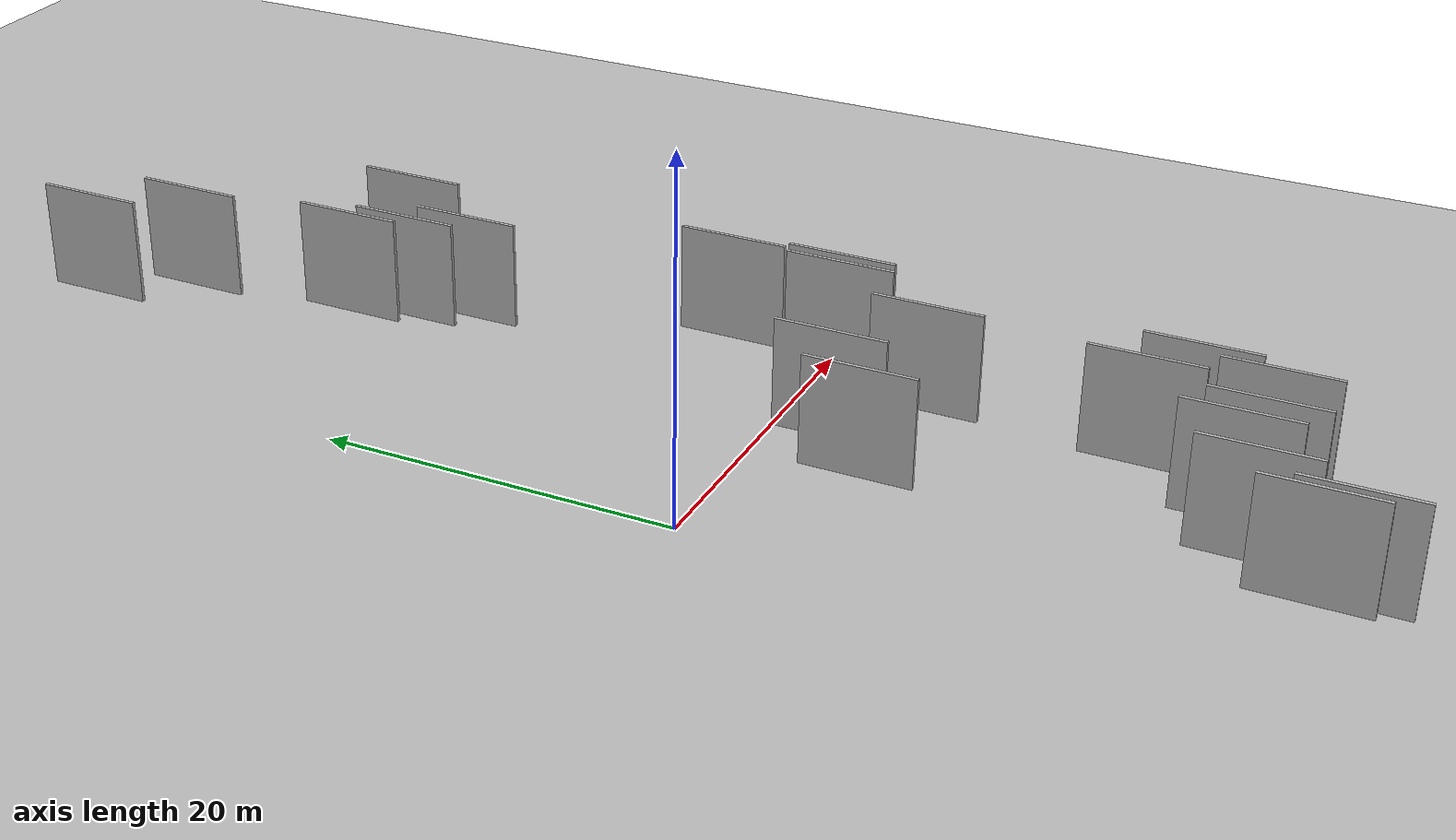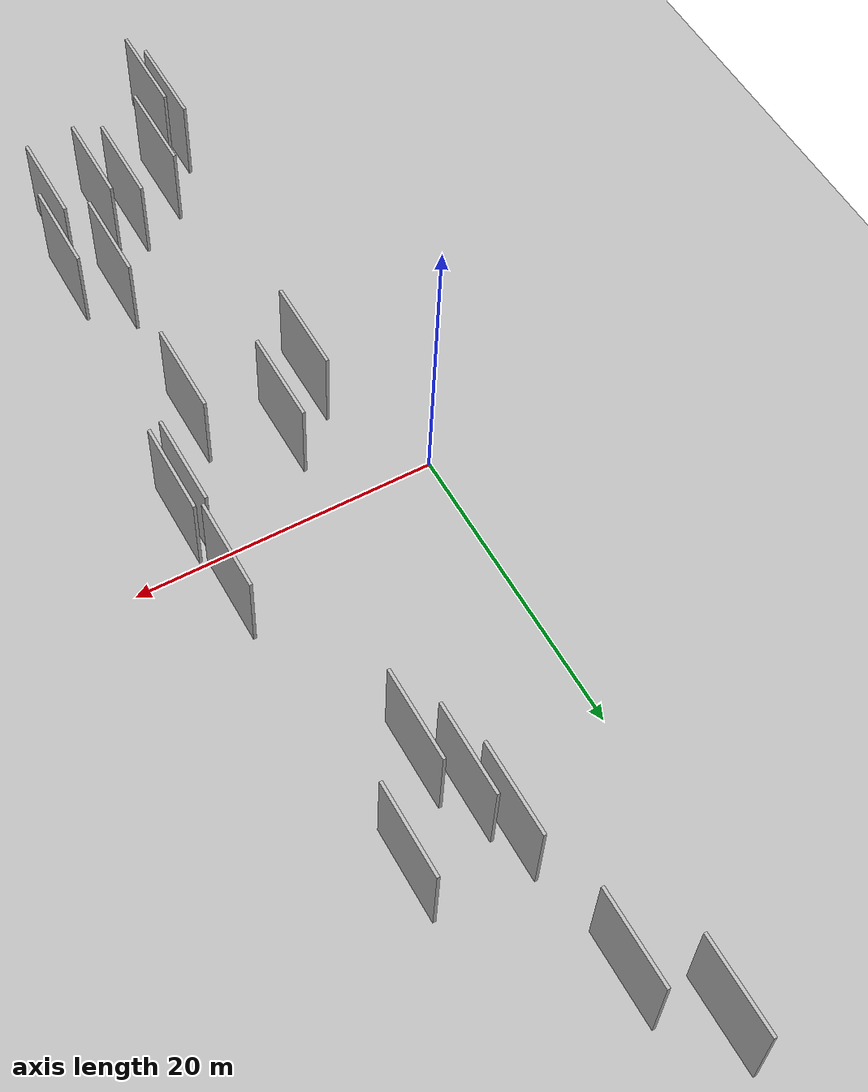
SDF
<?xml version="1.0" encoding="utf-8"?>

<sdf version="1.6">

   <world name="default">

      <gui fullscreen="0">

         <camera name="user_camera">

            <pose>-15 0 4.57585 0 0 0</pose>

            <view_controller>orbit</view_controller>

         </camera>

      </gui>

      <scene>

         <sky>

           <clouds>

             <speed>12</speed>

           </clouds>

         </sky>

         <ambient>0.4 0.4 0.4 1</ambient>

         <background>0.7 0.7 0.7 1</background>

         <shadows>1</shadows>

      </scene>

      <gravity>0 0 -9.8066</gravity>

      <magnetic_field>6e-06 2.3e-05 -4.2e-05</magnetic_field>

      <physics default="0" name="default_physics" type="ode">

         <ode>

            <solver>

               <type>quick</type>

               <iters>10</iters>

               <sor>1.0</sor>

               <use_dynamic_moi_rescaling>0</use_dynamic_moi_rescaling>

            </solver>

            <constraints>

               <cfm>0</cfm>

               <erp>0.2</erp>

               <contact_max_correcting_vel>100</contact_max_correcting_vel>

               <contact_surface_layer>0.001</contact_surface_layer>

            </constraints>

         </ode>

         <max_step_size>0.004</max_step_size>

         <real_time_factor>1</real_time_factor>

         <real_time_update_rate>250</real_time_update_rate>

      </physics>

      <light name="sun" type="directional">

         <cast_shadows>1</cast_shadows>

         <pose>0 0 10 0 0 0</pose>

         <diffuse>0.8 0.8 0.8 1</diffuse>

         <specular>0.2 0.2 0.2 1</specular>

         <attenuation>

            <range>1000</range>

            <constant>0.9</constant>

            <linear>0.01</linear>

            <quadratic>0.001</quadratic>

         </attenuation>

         <direction>-0.5 0.1 -0.9</direction>

      </light>

      <include>

         <name>ground_plane_1</name>

         <uri>model://HANNAS_ground_plane</uri>

         <pose>0 0 0  0 0 0</pose>

      </include>

      <include>

         <name>ground_plane_2</name>

         <uri>model://HANNAS_ground_plane</uri>

         <pose>100 0 0  0 0 0</pose>

      </include>

      <model name="HANNAS_wall_1">

         <static>1</static>

         <pose frame="">10.0781 21.2620 2.5 0.000000 0.000000 1.570796</pose>

         <link name="link">

            <pose frame="">0 0 3.00 0 0 0</pose>

            <collision name="collision">

               <geometry>

                  <box>

                     <size>6.00 0.2 6.00</size>

                  </box>

               </geometry>

               <max_contacts>10</max_contacts>

               <surface>

                  <contact>

                     <ode/>

                  </contact>

                  <bounce/>

                  <friction>

                     <torsional>

                        <ode/>

                     </torsional>

                     <ode/>

                  </friction>

               </surface>

            </collision>

            <visual name="visual">

               <cast_shadows>0</cast_shadows>

               <geometry>

                  <box>

                     <size>6.00 0.2 6.00</size>

                  </box>

               </geometry>

               <material>

                  <script>

                     <uri>model://HANNAS_wall/materials/scripts</uri>

                     <uri>model://HANNAS_wall/materials/textures</uri>

                     <name>vrc/HANNAS_wall</name>

                  </script>

               </material>

            </visual>

            <self_collide>0</self_collide>

            <enable_wind>0</enable_wind>

            <kinematic>0</kinematic>

         </link>

      </model>

      <model name="HANNAS_wall_2">

         <static>1</static>

         <pose frame="">8.0754 34.0014 2.5 0.000000 0.000000 1.570796</pose>

         <link name="link">

            <pose frame="">0 0 3.00 0 0 0</pose>

            <collision name="collision">

               <geometry>

                  <box>

                     <size>6.00 0.2 6.00</size>

                  </box>

               </geometry>

               <max_contacts>10</max_contacts>

               <surface>

                  <contact>

                     <ode/>

                  </contact>

                  <bounce/>

                  <friction>

                     <torsional>

                        <ode/>

                     </torsional>

                     <ode/>

                  </friction>

               </surface>

            </collision>

            <visual name="visual">

               <cast_shadows>0</cast_shadows>

               <geometry>

                  <box>

                     <size>6.00 0.2 6.00</size>

                  </box>

               </geometry>

               <material>

                  <script>

                     <uri>model://HANNAS_wall/materials/scripts</uri>

                     <uri>model://HANNAS_wall/materials/textures</uri>

                     <name>vrc/HANNAS_wall</name>

                  </script>

               </material>

            </visual>

            <self_collide>0</self_collide>

            <enable_wind>0</enable_wind>

            <kinematic>0</kinematic>

         </link>

      </model>

      <model name="HANNAS_wall_3">

         <static>1</static>

         <pose frame="">15.6154 4.1372 2.5 0.000000 0.000000 1.570796</pose>

         <link name="link">

            <pose frame="">0 0 3.00 0 0 0</pose>

            <collision name="collision">

               <geometry>

                  <box>

                     <size>6.00 0.2 6.00</size>

                  </box>

               </geometry>

               <max_contacts>10</max_contacts>

               <surface>

                  <contact>

                     <ode/>

                  </contact>

                  <bounce/>

                  <friction>

                     <torsional>

                        <ode/>

                     </torsional>

                     <ode/>

                  </friction>

               </surface>

            </collision>

            <visual name="visual">

               <cast_shadows>0</cast_shadows>

               <geometry>

                  <box>

                     <size>6.00 0.2 6.00</size>

                  </box>

               </geometry>

               <material>

                  <script>

                     <uri>model://HANNAS_wall/materials/scripts</uri>

                     <uri>model://HANNAS_wall/materials/textures</uri>

                     <name>vrc/HANNAS_wall</name>

                  </script>

               </material>

            </visual>

            <self_collide>0</self_collide>

            <enable_wind>0</enable_wind>

            <kinematic>0</kinematic>

         </link>

      </model>

      <model name="HANNAS_wall_4">

         <static>1</static>

         <pose frame="">10.2944 -25.6780 2.5 0.000000 0.000000 1.570796</pose>

         <link name="link">

            <pose frame="">0 0 3.00 0 0 0</pose>

            <collision name="collision">

               <geometry>

                  <box>

                     <size>6.00 0.2 6.00</size>

                  </box>

               </geometry>

               <max_contacts>10</max_contacts>

               <surface>

                  <contact>

                     <ode/>

                  </contact>

                  <bounce/>

                  <friction>

                     <torsional>

                        <ode/>

                     </torsional>

                     <ode/>

                  </friction>

               </surface>

            </collision>

            <visual name="visual">

               <cast_shadows>0</cast_shadows>

               <geometry>

                  <box>

                     <size>6.00 0.2 6.00</size>

                  </box>

               </geometry>

               <material>

                  <script>

                     <uri>model://HANNAS_wall/materials/scripts</uri>

                     <uri>model://HANNAS_wall/materials/textures</uri>

                     <name>vrc/HANNAS_wall</name>

                  </script>

               </material>

            </visual>

            <self_collide>0</self_collide>

            <enable_wind>0</enable_wind>

            <kinematic>0</kinematic>

         </link>

      </model>

      <model name="HANNAS_wall_5">

         <static>1</static>

         <pose frame="">11.5249 18.2368 2.5 0.000000 0.000000 1.570796</pose>

         <link name="link">

            <pose frame="">0 0 3.00 0 0 0</pose>

            <collision name="collision">

               <geometry>

                  <box>

                     <size>6.00 0.2 6.00</size>

                  </box>

               </geometry>

               <max_contacts>10</max_contacts>

               <surface>

                  <contact>

                     <ode/>

                  </contact>

                  <bounce/>

                  <friction>

                     <torsional>

                        <ode/>

                     </torsional>

                     <ode/>

                  </friction>

               </surface>

            </collision>

            <visual name="visual">

               <cast_shadows>0</cast_shadows>

               <geometry>

                  <box>

                     <size>6.00 0.2 6.00</size>

                  </box>

               </geometry>

               <material>

                  <script>

                     <uri>model://HANNAS_wall/materials/scripts</uri>

                     <uri>model://HANNAS_wall/materials/textures</uri>

                     <name>vrc/HANNAS_wall</name>

                  </script>

               </material>

            </visual>

            <self_collide>0</self_collide>

            <enable_wind>0</enable_wind>

            <kinematic>0</kinematic>

         </link>

      </model>

      <model name="HANNAS_wall_6">

         <static>1</static>

         <pose frame="">15.2632 -2.1343 2.5 0.000000 0.000000 1.570796</pose>

         <link name="link">

            <pose frame="">0 0 3.00 0 0 0</pose>

            <collision name="collision">

               <geometry>

                  <box>

                     <size>6.00 0.2 6.00</size>

                  </box>

               </geometry>

               <max_contacts>10</max_contacts>

               <surface>

                  <contact>

                     <ode/>

                  </contact>

                  <bounce/>

                  <friction>

                     <torsional>

                        <ode/>

                     </torsional>

                     <ode/>

                  </friction>

               </surface>

            </collision>

            <visual name="visual">

               <cast_shadows>0</cast_shadows>

               <geometry>

                  <box>

                     <size>6.00 0.2 6.00</size>

                  </box>

               </geometry>

               <material>

                  <script>

                     <uri>model://HANNAS_wall/materials/scripts</uri>

                     <uri>model://HANNAS_wall/materials/textures</uri>

                     <name>vrc/HANNAS_wall</name>

                  </script>

               </material>

            </visual>

            <self_collide>0</self_collide>

            <enable_wind>0</enable_wind>

            <kinematic>0</kinematic>

         </link>

      </model>

      <model name="HANNAS_wall_7">

         <static>1</static>

         <pose frame="">13.5310 -25.5161 2.5 0.000000 0.000000 1.570796</pose>

         <link name="link">

            <pose frame="">0 0 3.00 0 0 0</pose>

            <collision name="collision">

               <geometry>

                  <box>

                     <size>6.00 0.2 6.00</size>

                  </box>

               </geometry>

               <max_contacts>10</max_contacts>

               <surface>

                  <contact>

                     <ode/>

                  </contact>

                  <bounce/>

                  <friction>

                     <torsional>

                        <ode/>

                     </torsional>

                     <ode/>

                  </friction>

               </surface>

            </collision>

            <visual name="visual">

               <cast_shadows>0</cast_shadows>

               <geometry>

                  <box>

                     <size>6.00 0.2 6.00</size>

                  </box>

               </geometry>

               <material>

                  <script>

                     <uri>model://HANNAS_wall/materials/scripts</uri>

                     <uri>model://HANNAS_wall/materials/textures</uri>

                     <name>vrc/HANNAS_wall</name>

                  </script>

               </material>

            </visual>

            <self_collide>0</self_collide>

            <enable_wind>0</enable_wind>

            <kinematic>0</kinematic>

         </link>

      </model>

      <model name="HANNAS_wall_8">

         <static>1</static>

         <pose frame="">3.2987 -29.6583 2.5 0.000000 0.000000 1.570796</pose>

         <link name="link">

            <pose frame="">0 0 3.00 0 0 0</pose>

            <collision name="collision">

               <geometry>

                  <box>

                     <size>6.00 0.2 6.00</size>

                  </box>

               </geometry>

               <max_contacts>10</max_contacts>

               <surface>

                  <contact>

                     <ode/>

                  </contact>

                  <bounce/>

                  <friction>

                     <torsional>

                        <ode/>

                     </torsional>

                     <ode/>

                  </friction>

               </surface>

            </collision>

            <visual name="visual">

               <cast_shadows>0</cast_shadows>

               <geometry>

                  <box>

                     <size>6.00 0.2 6.00</size>

                  </box>

               </geometry>

               <material>

                  <script>

                     <uri>model://HANNAS_wall/materials/scripts</uri>

                     <uri>model://HANNAS_wall/materials/textures</uri>

                     <name>vrc/HANNAS_wall</name>

                  </script>

               </material>

            </visual>

            <self_collide>0</self_collide>

            <enable_wind>0</enable_wind>

            <kinematic>0</kinematic>

         </link>

      </model>

      <model name="HANNAS_wall_9">

         <static>1</static>

         <pose frame="">15.0407 23.7367 2.5 0.000000 0.000000 1.570796</pose>

         <link name="link">

            <pose frame="">0 0 3.00 0 0 0</pose>

            <collision name="collision">

               <geometry>

                  <box>

                     <size>6.00 0.2 6.00</size>

                  </box>

               </geometry>

               <max_contacts>10</max_contacts>

               <surface>

                  <contact>

                     <ode/>

                  </contact>

                  <bounce/>

                  <friction>

                     <torsional>

                        <ode/>

                     </torsional>

                     <ode/>

                  </friction>

               </surface>

            </collision>

            <visual name="visual">

               <cast_shadows>0</cast_shadows>

               <geometry>

                  <box>

                     <size>6.00 0.2 6.00</size>

                  </box>

               </geometry>

               <material>

                  <script>

                     <uri>model://HANNAS_wall/materials/scripts</uri>

                     <uri>model://HANNAS_wall/materials/textures</uri>

                     <name>vrc/HANNAS_wall</name>

                  </script>

               </material>

            </visual>

            <self_collide>0</self_collide>

            <enable_wind>0</enable_wind>

            <kinematic>0</kinematic>

         </link>

      </model>

      <model name="HANNAS_wall_10">

         <static>1</static>

         <pose frame="">5.6263 -26.3028 2.5 0.000000 0.000000 1.570796</pose>

         <link name="link">

            <pose frame="">0 0 3.00 0 0 0</pose>

            <collision name="collision">

               <geometry>

                  <box>

                     <size>6.00 0.2 6.00</size>

                  </box>

               </geometry>

               <max_contacts>10</max_contacts>

               <surface>

                  <contact>

                     <ode/>

                  </contact>

                  <bounce/>

                  <friction>

                     <torsional>

                        <ode/>

                     </torsional>

                     <ode/>

                  </friction>

               </surface>

            </collision>

            <visual name="visual">

               <cast_shadows>0</cast_shadows>

               <geometry>

                  <box>

                     <size>6.00 0.2 6.00</size>

                  </box>

               </geometry>

               <material>

                  <script>

                     <uri>model://HANNAS_wall/materials/scripts</uri>

                     <uri>model://HANNAS_wall/materials/textures</uri>

                     <name>vrc/HANNAS_wall</name>

                  </script>

               </material>

            </visual>

            <self_collide>0</self_collide>

            <enable_wind>0</enable_wind>

            <kinematic>0</kinematic>

         </link>

      </model>

      <model name="HANNAS_wall_11">

         <static>1</static>

         <pose frame="">12.4580 -8.0084 2.5 0.000000 0.000000 1.570796</pose>

         <link name="link">

            <pose frame="">0 0 3.00 0 0 0</pose>

            <collision name="collision">

               <geometry>

                  <box>

                     <size>6.00 0.2 6.00</size>

                  </box>

               </geometry>

               <max_contacts>10</max_contacts>

               <surface>

                  <contact>

                     <ode/>

                  </contact>

                  <bounce/>

                  <friction>

                     <torsional>

                        <ode/>

                     </torsional>

                     <ode/>

                  </friction>

               </surface>

            </collision>

            <visual name="visual">

               <cast_shadows>0</cast_shadows>

               <geometry>

                  <box>

                     <size>6.00 0.2 6.00</size>

                  </box>

               </geometry>

               <material>

                  <script>

                     <uri>model://HANNAS_wall/materials/scripts</uri>

                     <uri>model://HANNAS_wall/materials/textures</uri>

                     <name>vrc/HANNAS_wall</name>

                  </script>

               </material>

            </visual>

            <self_collide>0</self_collide>

            <enable_wind>0</enable_wind>

            <kinematic>0</kinematic>

         </link>

      </model>

      <model name="HANNAS_wall_12">

         <static>1</static>

         <pose frame="">16.0974 -1.9012 2.5 0.000000 0.000000 1.570796</pose>

         <link name="link">

            <pose frame="">0 0 3.00 0 0 0</pose>

            <collision name="collision">

               <geometry>

                  <box>

                     <size>6.00 0.2 6.00</size>

                  </box>

               </geometry>

               <max_contacts>10</max_contacts>

               <surface>

                  <contact>

                     <ode/>

                  </contact>

                  <bounce/>

                  <friction>

                     <torsional>

                        <ode/>

                     </torsional>

                     <ode/>

                  </friction>

               </surface>

            </collision>

            <visual name="visual">

               <cast_shadows>0</cast_shadows>

               <geometry>

                  <box>

                     <size>6.00 0.2 6.00</size>

                  </box>

               </geometry>

               <material>

                  <script>

                     <uri>model://HANNAS_wall/materials/scripts</uri>

                     <uri>model://HANNAS_wall/materials/textures</uri>

                     <name>vrc/HANNAS_wall</name>

                  </script>

               </material>

            </visual>

            <self_collide>0</self_collide>

            <enable_wind>0</enable_wind>

            <kinematic>0</kinematic>

         </link>

      </model>

      <model name="HANNAS_wall_13">

         <static>1</static>

         <pose frame="">8.6313 -24.7981 2.5 0.000000 0.000000 1.570796</pose>

         <link name="link">

            <pose frame="">0 0 3.00 0 0 0</pose>

            <collision name="collision">

               <geometry>

                  <box>

                     <size>6.00 0.2 6.00</size>

                  </box>

               </geometry>

               <max_contacts>10</max_contacts>

               <surface>

                  <contact>

                     <ode/>

                  </contact>

                  <bounce/>

                  <friction>

                     <torsional>

                        <ode/>

                     </torsional>

                     <ode/>

                  </friction>

               </surface>

            </collision>

            <visual name="visual">

               <cast_shadows>0</cast_shadows>

               <geometry>

                  <box>

                     <size>6.00 0.2 6.00</size>

                  </box>

               </geometry>

               <material>

                  <script>

                     <uri>model://HANNAS_wall/materials/scripts</uri>

                     <uri>model://HANNAS_wall/materials/textures</uri>

                     <name>vrc/HANNAS_wall</name>

                  </script>

               </material>

            </visual>

            <self_collide>0</self_collide>

            <enable_wind>0</enable_wind>

            <kinematic>0</kinematic>

         </link>

      </model>

      <model name="HANNAS_wall_14">

         <static>1</static>

         <pose frame="">7.7189 -4.7215 2.5 0.000000 0.000000 1.570796</pose>

         <link name="link">

            <pose frame="">0 0 3.00 0 0 0</pose>

            <collision name="collision">

               <geometry>

                  <box>

                     <size>6.00 0.2 6.00</size>

                  </box>

               </geometry>

               <max_contacts>10</max_contacts>

               <surface>

                  <contact>

                     <ode/>

                  </contact>

                  <bounce/>

                  <friction>

                     <torsional>

                        <ode/>

                     </torsional>

                     <ode/>

                  </friction>

               </surface>

            </collision>

            <visual name="visual">

               <cast_shadows>0</cast_shadows>

               <geometry>

                  <box>

                     <size>6.00 0.2 6.00</size>

                  </box>

               </geometry>

               <material>

                  <script>

                     <uri>model://HANNAS_wall/materials/scripts</uri>

                     <uri>model://HANNAS_wall/materials/textures</uri>

                     <name>vrc/HANNAS_wall</name>

                  </script>

               </material>

            </visual>

            <self_collide>0</self_collide>

            <enable_wind>0</enable_wind>

            <kinematic>0</kinematic>

         </link>

      </model>

      <model name="HANNAS_wall_15">

         <static>1</static>

         <pose frame="">4.9318 38.4271 2.5 0.000000 0.000000 1.570796</pose>

         <link name="link">

            <pose frame="">0 0 3.00 0 0 0</pose>

            <collision name="collision">

               <geometry>

                  <box>

                     <size>6.00 0.2 6.00</size>

                  </box>

               </geometry>

               <max_contacts>10</max_contacts>

               <surface>

                  <contact>

                     <ode/>

                  </contact>

                  <bounce/>

                  <friction>

                     <torsional>

                        <ode/>

                     </torsional>

                     <ode/>

                  </friction>

               </surface>

            </collision>

            <visual name="visual">

               <cast_shadows>0</cast_shadows>

               <geometry>

                  <box>

                     <size>6.00 0.2 6.00</size>

                  </box>

               </geometry>

               <material>

                  <script>

                     <uri>model://HANNAS_wall/materials/scripts</uri>

                     <uri>model://HANNAS_wall/materials/textures</uri>

                     <name>vrc/HANNAS_wall</name>

                  </script>

               </material>

            </visual>

            <self_collide>0</self_collide>

            <enable_wind>0</enable_wind>

            <kinematic>0</kinematic>

         </link>

      </model>

      <model name="HANNAS_wall_16">

         <static>1</static>

         <pose frame="">9.1551 24.3074 2.5 0.000000 0.000000 1.570796</pose>

         <link name="link">

            <pose frame="">0 0 3.00 0 0 0</pose>

            <collision name="collision">

               <geometry>

                  <box>

                     <size>6.00 0.2 6.00</size>

                  </box>

               </geometry>

               <max_contacts>10</max_contacts>

               <surface>

                  <contact>

                     <ode/>

                  </contact>

                  <bounce/>

                  <friction>

                     <torsional>

                        <ode/>

                     </torsional>

                     <ode/>

                  </friction>

               </surface>

            </collision>

            <visual name="visual">

               <cast_shadows>0</cast_shadows>

               <geometry>

                  <box>

                     <size>6.00 0.2 6.00</size>

                  </box>

               </geometry>

               <material>

                  <script>

                     <uri>model://HANNAS_wall/materials/scripts</uri>

                     <uri>model://HANNAS_wall/materials/textures</uri>

                     <name>vrc/HANNAS_wall</name>

                  </script>

               </material>

            </visual>

            <self_collide>0</self_collide>

            <enable_wind>0</enable_wind>

            <kinematic>0</kinematic>

         </link>

      </model>

      <model name="HANNAS_wall_17">

         <static>1</static>

         <pose frame="">14.4473 -21.4778 2.5 0.000000 0.000000 1.570796</pose>

         <link name="link">

            <pose frame="">0 0 3.00 0 0 0</pose>

            <collision name="collision">

               <geometry>

                  <box>

                     <size>6.00 0.2 6.00</size>

                  </box>

               </geometry>

               <max_contacts>10</max_contacts>

               <surface>

                  <contact>

                     <ode/>

                  </contact>

                  <bounce/>

                  <friction>

                     <torsional>

                        <ode/>

                     </torsional>

                     <ode/>

                  </friction>

               </surface>

            </collision>

            <visual name="visual">

               <cast_shadows>0</cast_shadows>

               <geometry>

                  <box>

                     <size>6.00 0.2 6.00</size>

                  </box>

               </geometry>

               <material>

                  <script>

                     <uri>model://HANNAS_wall/materials/scripts</uri>

                     <uri>model://HANNAS_wall/materials/textures</uri>

                     <name>vrc/HANNAS_wall</name>

                  </script>

               </material>

            </visual>

            <self_collide>0</self_collide>

            <enable_wind>0</enable_wind>

            <kinematic>0</kinematic>

         </link>

      </model>

      <model name="HANNAS_wall_18">

         <static>1</static>

         <pose frame="">11.9776 -19.3752 2.5 0.000000 0.000000 1.570796</pose>

         <link name="link">

            <pose frame="">0 0 3.00 0 0 0</pose>

            <collision name="collision">

               <geometry>

                  <box>

                     <size>6.00 0.2 6.00</size>

                  </box>

               </geometry>

               <max_contacts>10</max_contacts>

               <surface>

                  <contact>

                     <ode/>

                  </contact>

                  <bounce/>

                  <friction>

                     <torsional>

                        <ode/>

                     </torsional>

                     <ode/>

                  </friction>

               </surface>

            </collision>

            <visual name="visual">

               <cast_shadows>0</cast_shadows>

               <geometry>

                  <box>

                     <size>6.00 0.2 6.00</size>

                  </box>

               </geometry>

               <material>

                  <script>

                     <uri>model://HANNAS_wall/materials/scripts</uri>

                     <uri>model://HANNAS_wall/materials/textures</uri>

                     <name>vrc/HANNAS_wall</name>

                  </script>

               </material>

            </visual>

            <self_collide>0</self_collide>

            <enable_wind>0</enable_wind>

            <kinematic>0</kinematic>

         </link>

      </model>

      <model name="HANNAS_wall_19">

         <static>1</static>

         <pose frame="">4.7375 -7.4354 2.5 0.000000 0.000000 1.570796</pose>

         <link name="link">

            <pose frame="">0 0 3.00 0 0 0</pose>

            <collision name="collision">

               <geometry>

                  <box>

                     <size>6.00 0.2 6.00</size>

                  </box>

               </geometry>

               <max_contacts>10</max_contacts>

               <surface>

                  <contact>

                     <ode/>

                  </contact>

                  <bounce/>

                  <friction>

                     <torsional>

                        <ode/>

                     </torsional>

                     <ode/>

                  </friction>

               </surface>

            </collision>

            <visual name="visual">

               <cast_shadows>0</cast_shadows>

               <geometry>

                  <box>

                     <size>6.00 0.2 6.00</size>

                  </box>

               </geometry>

               <material>

                  <script>

                     <uri>model://HANNAS_wall/materials/scripts</uri>

                     <uri>model://HANNAS_wall/materials/textures</uri>

                     <name>vrc/HANNAS_wall</name>

                  </script>

               </material>

            </visual>

            <self_collide>0</self_collide>

            <enable_wind>0</enable_wind>

            <kinematic>0</kinematic>

         </link>

      </model>

      <model name="HANNAS_wall_20">

         <static>1</static>

         <pose frame="">3.9477 -31.2192 2.5 0.000000 0.000000 1.570796</pose>

         <link name="link">

            <pose frame="">0 0 3.00 0 0 0</pose>

            <collision name="collision">

               <geometry>

                  <box>

                     <size>6.00 0.2 6.00</size>

                  </box>

               </geometry>

               <max_contacts>10</max_contacts>

               <surface>

                  <contact>

                     <ode/>

                  </contact>

                  <bounce/>

                  <friction>

                     <torsional>

                        <ode/>

                     </torsional>

                     <ode/>

                  </friction>

               </surface>

            </collision>

            <visual name="visual">

               <cast_shadows>0</cast_shadows>

               <geometry>

                  <box>

                     <size>6.00 0.2 6.00</size>

                  </box>

               </geometry>

               <material>

                  <script>

                     <uri>model://HANNAS_wall/materials/scripts</uri>

                     <uri>model://HANNAS_wall/materials/textures</uri>

                     <name>vrc/HANNAS_wall</name>

                  </script>

               </material>

            </visual>

            <self_collide>0</self_collide>

            <enable_wind>0</enable_wind>

            <kinematic>0</kinematic>

         </link>

      </model>

   </world>

</sdf>

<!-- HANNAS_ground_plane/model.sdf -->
<sdf version="1.4">
<model name="HANNAS_ground_plane">
  <static>true</static>
    <link name="link">
      <collision name="collision">
        <geometry>
          <plane>
            <normal>0 0 1</normal>
            <size>1000 1000</size>
          </plane>
        </geometry>
        <surface>
          <friction>
            <ode>
              <mu>100</mu>
              <mu2>50</mu2>
            </ode>
          </friction>
        </surface>
      </collision>
      <visual name="visual">
        <cast_shadows>false</cast_shadows>
        <geometry>
          <plane>
            <normal>0 0 1</normal>
            <size>1000 1000</size>
          </plane>
        </geometry>
        <material>
          <script>
            <uri>model://HANNAS_ground_plane/materials/scripts/HANNAS_ground_plane.material</uri>
	    <uri>model://HANNAS_ground_plane/materials/textures</uri>
            <name>HANNASGroundPlane/Image</name>
          </script>
        </material>
      </visual>
    </link>
  </model>
</sdf>
